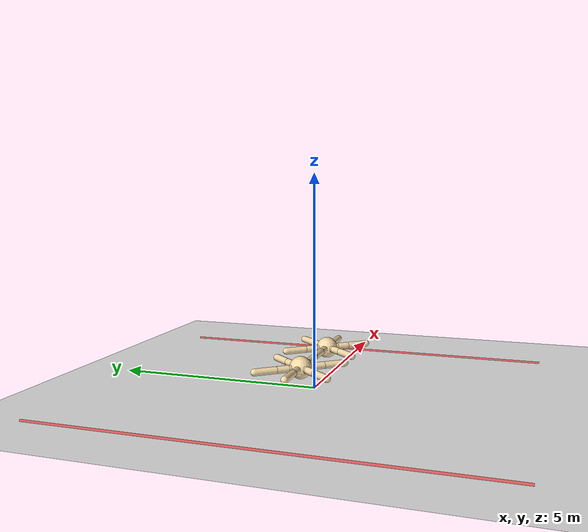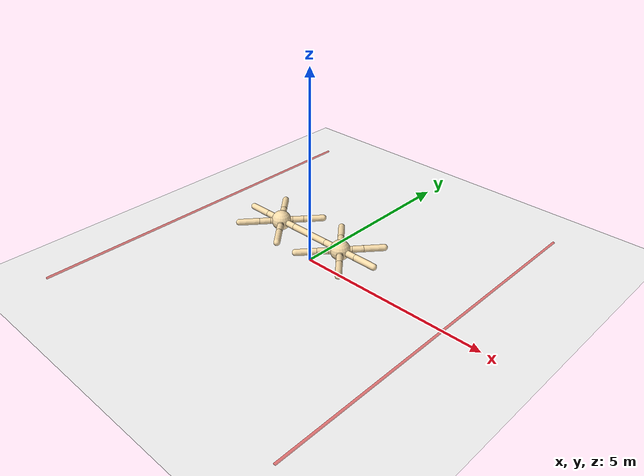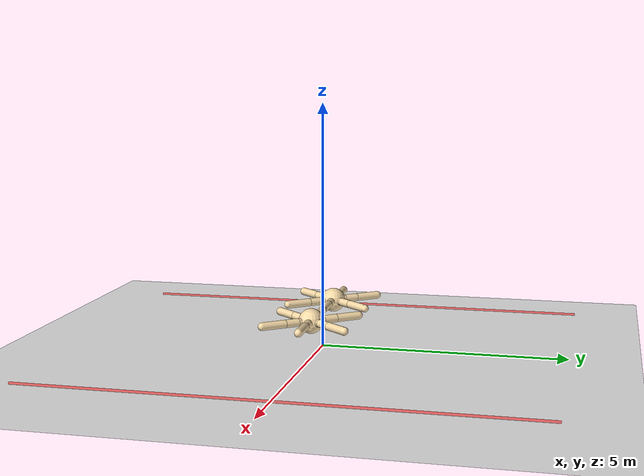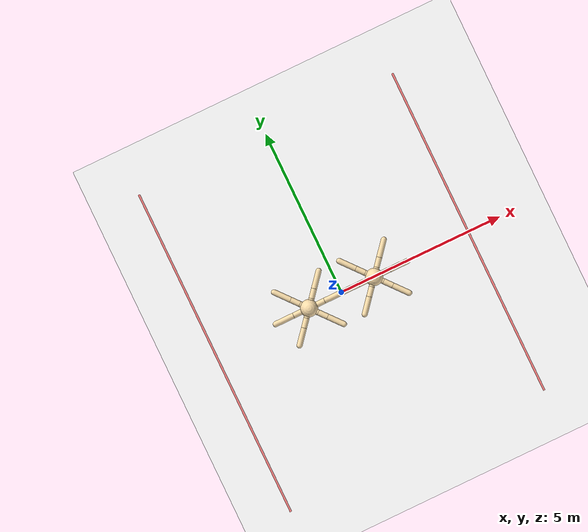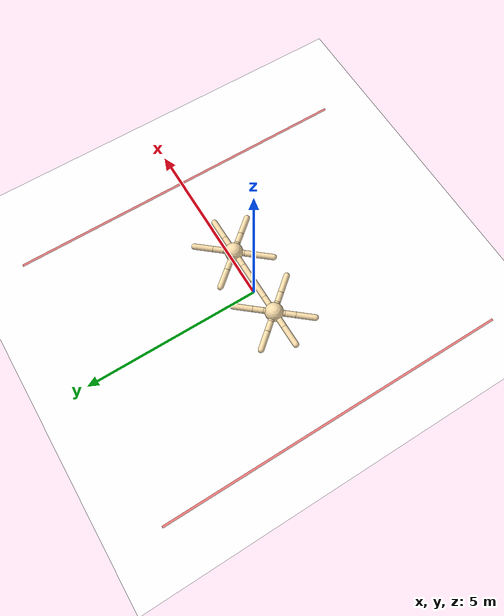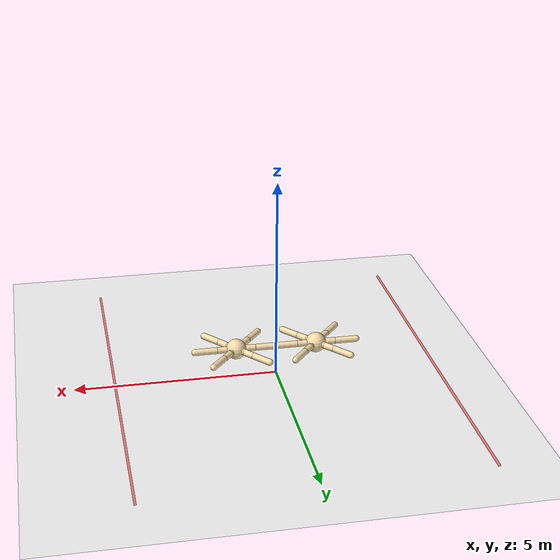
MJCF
<mujoco model="mutiagent_world">
  <compiler angle="degree" coordinate="local" inertiafromgeom="true" />

  <option integrator="RK4" timestep="0.003" solver="PGS" iterations="1000" />

  <default>
    <joint armature="1" damping="1" limited="true" />
  <default class="agent0"><geom conaffinity="0" condim="3" density="5.0" friction="1 0.5 0.5" margin="0.01" rgba="0.98 0.87 0.67 1" material="geom" contype="1" />
    <motor ctrllimited="true" ctrlrange="-1. 1." />
  </default><default class="agent1"><geom conaffinity="1" condim="3" density="5.0" friction="1 0.5 0.5" margin="0.01" rgba="0.98 0.87 0.67 1" material="geom" contype="0" />
    <motor ctrllimited="true" ctrlrange="-1. 1." />
    <joint armature="1" damping="1" limited="true" />
  </default></default>

  <visual>
    <headlight ambient=".1 .1 .1" diffuse=".6 .6 .6" specular="0.3 0.3 0.3" />
    <map znear=".01" />
    <quality shadowsize="16384" />
  </visual>

  <asset>
    <texture builtin="gradient" height="100" rgb1=".4 .5 .6" rgb2="0 0 0" type="skybox" width="100" />
    <texture builtin="flat" height="1278" mark="cross" markrgb="0 0 0" name="texgeom" random="0.01" rgb1="0.8 0.6 0.4" rgb2="0.8 0.6 0.4" type="cube" width="127" />
    <texture builtin="checker" height="100" name="texplane" rgb1="0 0 0" rgb2="0.8 0.8 0.8" type="2d" width="100" />
    <texture name="MatPlane" type="2d" builtin="checker" rgb1=".5 .5 .5" rgb2=".5 .5 .5" width="300" height="300" mark="edge" markrgb="0.1 0.1 0.1" />
    <material name="MatPlane" texture="MatPlane" texrepeat="2 2" texuniform="true" reflectance=".2" />
    <material name="geom" texture="texgeom" texuniform="true" />
  </asset>

  <worldbody>
    <light cutoff="100" diffuse="1 1 1" dir="-0 0 -1.3" directional="true" exponent="1" pos="0 0 1.3" specular=".1 .1 .1" />
    <geom contype="1" conaffinity="1" friction="1 .1 .1" condim="3" material="MatPlane" name="floor" pos="0 0 0" rgba="1 1 1 1" size="20 20 0.125" type="plane" />
    <geom fromto="4 -5 0  4 +5 0" name="rightgoal" rgba="1 0 0 0.5" size=".03" type="cylinder" />
    <geom fromto="-4 -5 0  -4 +5 0" name="leftgoal" rgba="1 0 0 0.5" size=".03" type="cylinder" />
  <body name="agent0/torso" pos="-1 0 0.75">
    <geom name="agent0/torso_geom" pos="0 0 0" size="0.25" type="sphere" class="agent0" />
    <joint armature="0" damping="0" limited="false" margin="0.01" name="agent0/root" pos="0 0 0" type="free" />

    <body name="agent0/back_left_leg" pos="0 0 0">
      <geom fromto="0 0 0 0.18 0.215 0" name="agent0/aux_1_geom" size="0.08" type="capsule" class="agent0" />
      <body name="agent0/aux_11" pos="0.18 0.215 0">
        <joint axis="0 0 1" name="agent0/hip_1" pos="0 0 0" range="-30 30" type="hinge" />
        <geom fromto="0 0 0 0.18 0.215 0" name="agent0/back_left_leg_geom" size="0.08" type="capsule" class="agent0" />
        <body name="agent0/aux_12" pos="0.18 0.215 0">
          <joint axis="-1 1 0" name="agent0/ankle_1" pos="0 0 0" range="30 70" type="hinge" />
          <geom fromto="0 0 0 0.324 0.387 0" name="agent0/back_left_ankle_geom" size="0.08" type="capsule" class="agent0" />
        </body>
      </body>
    </body>

    <body name="agent0/back_right_leg" pos="0 0 0">
      <geom fromto="0 0 0 -0.18 0.215 0" name="agent0/aux_2_geom" size="0.08" type="capsule" class="agent0" />
      <body name="agent0/aux_21" pos="-0.18 0.215 0">
        <joint axis="0 0 1" name="agent0/hip_2" pos="0 0 0" range="-30 30" type="hinge" />
        <geom fromto="0 0 0 -0.18 0.215 0" name="agent0/back_right_leg_geom" size="0.08" type="capsule" class="agent0" />
        <body name="agent0/aux_22" pos="-0.18 0.215 0">
          <joint axis="1 1 0" name="agent0/ankle_2" pos="0 0 0" range="-70 -30" type="hinge" />
          <geom fromto="0 0 0 -0.324 0.387 0" name="agent0/back_right_ankle_geom" size="0.08" type="capsule" class="agent0" />
        </body>
      </body>
    </body>

    <body name="agent0/middle_right_leg" pos="0 0 0">
      <geom fromto="0 0 0 -0.2 0 0" name="agent0/aux_3_geom" size="0.08" type="capsule" class="agent0" />
      <body name="agent0/aux_31" pos="-0.2 0 0">
        <joint axis="0 0 1" name="agent0/hip_3" pos="0 0 0" range="-30 30" type="hinge" />
        <geom fromto="0 0 0 -0.275 0 0" name="agent0/middle_right_leg_geom" size="0.08" type="capsule" class="agent0" />
        <body name="agent0/aux_32" pos="-0.275 0 0">
          <joint axis="0 1 0" name="agent0/ankle_3" pos="0 0 0" range="-70 -30" type="hinge" />
          <geom fromto="0 0 0 -0.55 0 0" name="agent0/middle_right_ankle_geom" size="0.08" type="capsule" class="agent0" />
        </body>
      </body>
    </body>

    <body name="agent0/middle_left_leg" pos="0 0 0">
      <geom fromto="0 0 0 0.2 0 0" name="agent0/aux_4_geom" size="0.08" type="capsule" class="agent0" />
      <body name="agent0/aux_41" pos="0.2 0 0">
        <joint axis="0 0 1" name="agent0/hip_4" pos="0 0 0" range="-30 30" type="hinge" />
        <geom fromto="0 0 0 0.275 0 0" name="agent0/middle_left_leg_geom" size="0.08" type="capsule" class="agent0" />
        <body name="agent0/aux_42" pos="0.275 0 0">
          <joint axis="0 1 0" name="agent0/ankle_4" pos="0 0 0" range="30 70" type="hinge" />
          <geom fromto="0 0 0 0.55 0 0" name="agent0/middle_left_ankle_geom" size="0.08" type="capsule" class="agent0" />
        </body>
      </body>
    </body>

    <body name="agent0/front_right_leg" pos="0 0 0">
      <geom fromto="0 0 0 -0.18 -0.215 0" name="agent0/aux_5_geom" size="0.08" type="capsule" class="agent0" />
      <body name="agent0/aux_51" pos="-0.18 -0.215 0">
        <joint axis="0 0 1" name="agent0/hip_5" pos="0 0 0" range="-30 30" type="hinge" />
        <geom fromto="0 0 0 -0.18 -0.215 0" name="agent0/front_right_leg_geom" size="0.08" type="capsule" class="agent0" />
        <body name="agent0/aux_52" pos="-0.18 -0.215 0">
          <joint axis="-1 1 0" name="agent0/ankle_5" pos="0 0 0" range="-70 -30" type="hinge" />
          <geom fromto="0 0 0 -0.324 -0.387 0" name="agent0/front_right_ankle_geom" size="0.08" type="capsule" class="agent0" />
        </body>
      </body>
    </body>

    <body name="agent0/front_left_leg" pos="0 0 0">
      <geom fromto="0 0 0 0.18 -0.215 0" name="agent0/aux_6_geom" size="0.08" type="capsule" class="agent0" />
      <body name="agent0/aux_61" pos="0.18 -0.215 0">
        <joint axis="0 0 1" name="agent0/hip_6" pos="0 0 0" range="-30 30" type="hinge" />
        <geom fromto="0 0 0 0.18 -0.215 0" name="agent0/front_left_leg_geom" size="0.08" type="capsule" class="agent0" />
        <body name="agent0/aux_62" pos="0.18 -0.215 0">
          <joint axis="1 1 0" name="agent0/ankle_6" pos="0 0 0" range="30 70" type="hinge" />
          <geom fromto="0 0 0 0.324 -0.387 0" name="agent0/front_left_ankle_geom" size="0.08" type="capsule" class="agent0" />
        </body>
      </body>
    </body>
  </body>
  <body name="agent1/0" pos="1 0 0.75" euler="0 0 180">
      <geom pos="0 0 0" size="0.25" type="sphere" class="agent1" name="agent1/anon1934879561" />
      <joint armature="0" damping="0" limited="false" margin="0.01" name="agent1/0_joint" pos="0 0 0" type="free" />

      <body name="agent1/1" pos="0 0 0">
        <geom fromto="0 0 0 0.18 0.215 0" size="0.08" type="capsule" class="agent1" name="agent1/anon8646907154" />
        <body name="agent1/11" pos="0.18 0.215 0">
          <joint axis="0 0 1" name="agent1/11_joint" pos="0 0 0" range="-30 30" type="hinge" />
          <geom fromto="0 0 0 0.18 0.215 0" size="0.08" type="capsule" class="agent1" name="agent1/anon5950318586" />
          <body name="agent1/111" pos="0.18 0.215 0">
            <joint axis="-1 1 0" name="agent1/111_joint" pos="0 0 0" range="30 70" type="hinge" />
            <geom fromto="0 0 0 0.324 0.387 0" size="0.08" type="capsule" class="agent1" name="agent1/anon68574554" />
          </body>
        </body>
      </body>

      <body name="agent1/2" pos="0 0 0">
        <geom fromto="0 0 0 -0.18 0.215 0" size="0.08" type="capsule" class="agent1" name="agent1/anon991681410" />
        <body name="agent1/12" pos="-0.18 0.215 0">
          <joint axis="0 0 1" name="agent1/12_joint" pos="0 0 0" range="-30 30" type="hinge" />
          <geom fromto="0 0 0 -0.18 0.215 0" size="0.08" type="capsule" class="agent1" name="agent1/anon3578544904" />
          <body name="agent1/112" pos="-0.18 0.215 0">
            <joint axis="1 1 0" name="agent1/112_joint" pos="0 0 0" range="-70 -30" type="hinge" />
            <geom fromto="0 0 0 -0.324 0.387 0" size="0.08" type="capsule" class="agent1" name="agent1/anon9334530083" />
          </body>
        </body>
      </body>

      <body name="agent1/3" pos="0 0 0">
        <geom fromto="0 0 0 -0.2 0 0" size="0.08" type="capsule" class="agent1" name="agent1/anon5974559825" />
        <body name="agent1/13" pos="-0.2 0 0">
          <joint axis="0 0 1" name="agent1/13_joint" pos="0 0 0" range="-30 30" type="hinge" />
          <geom fromto="0 0 0 -0.275 0 0" size="0.08" type="capsule" class="agent1" name="agent1/anon6120997886" />
          <body name="agent1/113" pos="-0.275 0 0">
            <joint axis="0 1 0" name="agent1/113_joint" pos="0 0 0" range="-70 -30" type="hinge" />
            <geom fromto="0 0 0 -0.55 0 0" size="0.08" type="capsule" class="agent1" name="agent1/anon5188069942" />
          </body>
        </body>
      </body>

      <body name="agent1/4" pos="0 0 0">
        <geom fromto="0 0 0 0.2 0 0" size="0.08" type="capsule" class="agent1" name="agent1/anon6733221636" />
        <body name="agent1/14" pos="0.2 0 0">
          <joint axis="0 0 1" name="agent1/14_joint" pos="0 0 0" range="-30 30" type="hinge" />
          <geom fromto="0 0 0 0.275 0 0" size="0.08" type="capsule" class="agent1" name="agent1/anon4429456861" />
          <body name="agent1/114" pos="0.275 0 0">
            <joint axis="0 1 0" name="agent1/114_joint" pos="0 0 0" range="30 70" type="hinge" />
            <geom fromto="0 0 0 0.55 0 0" size="0.08" type="capsule" class="agent1" name="agent1/anon6226646572" />
          </body>
        </body>
      </body>

      <body name="agent1/5" pos="0 0 0">
        <geom fromto="0 0 0 -0.18 -0.215 0" size="0.08" type="capsule" class="agent1" name="agent1/anon5992124618" />
        <body name="agent1/15" pos="-0.18 -0.215 0">
          <joint axis="0 0 1" name="agent1/15_joint" pos="0 0 0" range="-30 30" type="hinge" />
          <geom fromto="0 0 0 -0.18 -0.215 0" size="0.08" type="capsule" class="agent1" name="agent1/anon8274936804" />
          <body name="agent1/115" pos="-0.18 -0.215 0">
            <joint axis="-1 1 0" name="agent1/115_joint" pos="0 0 0" range="-70 -30" type="hinge" />
            <geom fromto="0 0 0 -0.324 -0.387 0" size="0.08" type="capsule" class="agent1" name="agent1/anon7418576735" />
          </body>
        </body>
      </body>

      <body name="agent1/6" pos="0 0 0">
        <geom fromto="0 0 0 0.18 -0.215 0" size="0.08" type="capsule" class="agent1" name="agent1/anon4128202430" />
        <body name="agent1/16" pos="0.18 -0.215 0">
          <joint axis="0 0 1" name="agent1/16_joint" pos="0 0 0" range="-30 30" type="hinge" />
          <geom fromto="0 0 0 0.18 -0.215 0" size="0.08" type="capsule" class="agent1" name="agent1/anon6612927343" />
          <body name="agent1/116" pos="0.18 -0.215 0">
            <joint axis="1 1 0" name="agent1/116_joint" pos="0 0 0" range="30 70" type="hinge" />
            <geom fromto="0 0 0 0.324 -0.387 0" size="0.08" type="capsule" class="agent1" name="agent1/anon2520077080" />
          </body>
        </body>
      </body>
    </body>

  </worldbody>
<actuator>
    <motor ctrllimited="true" ctrlrange="-1.0 1.0" joint="agent0/hip_1" gear="150" class="agent0" />
    <motor ctrllimited="true" ctrlrange="-1.0 1.0" joint="agent0/ankle_1" gear="150" class="agent0" />
    <motor ctrllimited="true" ctrlrange="-1.0 1.0" joint="agent0/hip_2" gear="150" class="agent0" />
    <motor ctrllimited="true" ctrlrange="-1.0 1.0" joint="agent0/ankle_2" gear="150" class="agent0" />
    <motor ctrllimited="true" ctrlrange="-1.0 1.0" joint="agent0/hip_3" gear="150" class="agent0" />
    <motor ctrllimited="true" ctrlrange="-1.0 1.0" joint="agent0/ankle_3" gear="150" class="agent0" />
    <motor ctrllimited="true" ctrlrange="-1.0 1.0" joint="agent0/hip_4" gear="150" class="agent0" />
    <motor ctrllimited="true" ctrlrange="-1.0 1.0" joint="agent0/ankle_4" gear="150" class="agent0" />
    <motor ctrllimited="true" ctrlrange="-1.0 1.0" joint="agent0/hip_5" gear="150" class="agent0" />
    <motor ctrllimited="true" ctrlrange="-1.0 1.0" joint="agent0/ankle_5" gear="150" class="agent0" />
    <motor ctrllimited="true" ctrlrange="-1.0 1.0" joint="agent0/hip_6" gear="150" class="agent0" />
    <motor ctrllimited="true" ctrlrange="-1.0 1.0" joint="agent0/ankle_6" gear="150" class="agent0" />
  <motor ctrllimited="true" ctrlrange="-1.0 1.0" joint="agent1/11_joint" gear="150" name="agent1/11_joint" class="agent1" />
    <motor ctrllimited="true" ctrlrange="-1.0 1.0" joint="agent1/111_joint" gear="150" name="agent1/111_joint" class="agent1" />
    <motor ctrllimited="true" ctrlrange="-1.0 1.0" joint="agent1/12_joint" gear="150" name="agent1/12_joint" class="agent1" />
    <motor ctrllimited="true" ctrlrange="-1.0 1.0" joint="agent1/112_joint" gear="150" name="agent1/112_joint" class="agent1" />
    <motor ctrllimited="true" ctrlrange="-1.0 1.0" joint="agent1/13_joint" gear="150" name="agent1/13_joint" class="agent1" />
    <motor ctrllimited="true" ctrlrange="-1.0 1.0" joint="agent1/113_joint" gear="150" name="agent1/113_joint" class="agent1" />
    <motor ctrllimited="true" ctrlrange="-1.0 1.0" joint="agent1/14_joint" gear="150" name="agent1/14_joint" class="agent1" />
    <motor ctrllimited="true" ctrlrange="-1.0 1.0" joint="agent1/114_joint" gear="150" name="agent1/114_joint" class="agent1" />
    <motor ctrllimited="true" ctrlrange="-1.0 1.0" joint="agent1/15_joint" gear="150" name="agent1/15_joint" class="agent1" />
    <motor ctrllimited="true" ctrlrange="-1.0 1.0" joint="agent1/115_joint" gear="150" name="agent1/115_joint" class="agent1" />
    <motor ctrllimited="true" ctrlrange="-1.0 1.0" joint="agent1/16_joint" gear="150" name="agent1/16_joint" class="agent1" />
    <motor ctrllimited="true" ctrlrange="-1.0 1.0" joint="agent1/116_joint" gear="150" name="agent1/116_joint" class="agent1" />
  </actuator>
  </mujoco>
